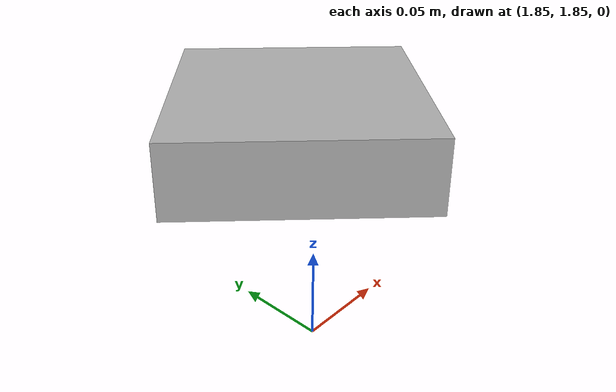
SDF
<?xml version='1.0'?>
<sdf version='1.6'>
    <model name='block'>
        <link name='base'>
            <inertial>
                <mass>0.3</mass>
            </inertial>
            <pose>2 2 0.03 0 0 .785</pose>
            <collision name="collision">
                <geometry>
                    <box>
                        <size>0.2 0.4 0.06</size>
                    </box>
                </geometry>
                <surface>
                    <friction>
                        <ode>
                            <mu>500</mu>
                            <mu2>500</mu2>
                            <slip1>0.0</slip1>
                            <slip2>0.0</slip2>
                        </ode>
                    </friction>
                    <contact>
                        <ode>
                            <kp>1e8</kp>
                            <kd>1e7</kd>
                            <min_depth>3</min_depth>
                        </ode>
                    </contact>
                </surface>
            </collision>
            <visual name='visual'>
                <geometry>
                    <box>
                        <size>0.2 0.2 0.06</size>
                    </box>
                </geometry>
                <material>
                    <script>
                        <uri>model://materials/scripts</uri>
                        <uri>model://materials/textures</uri>
                        <name>RedArmMaterial/Diffuse</name>
                    </script>
                </material>
            </visual>
        </link>
    </model>
</sdf>
